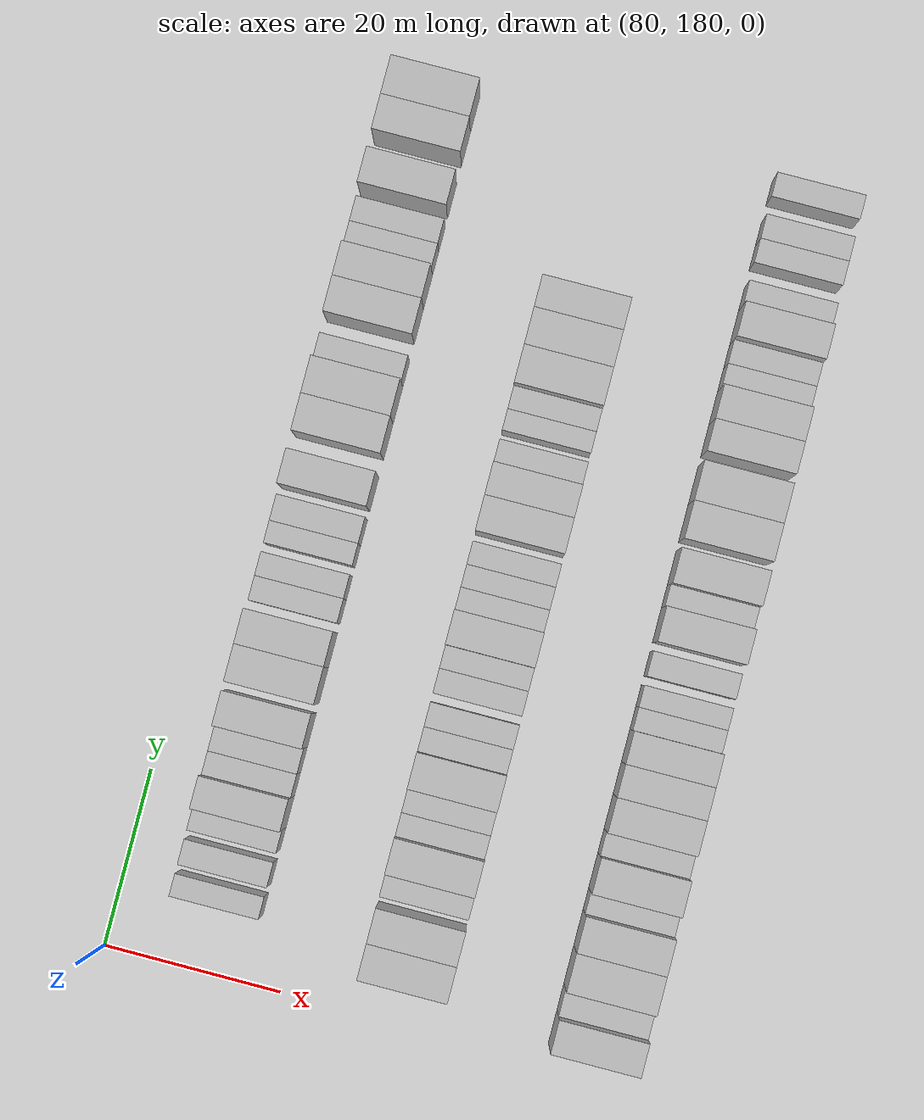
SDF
<sdf version="1.6">
 <world name="default">
  <model name="building_700">
   <static>1</static>
   <pose>91.0000 188.9119 0 0.000000 0.000000 0.000000</pose>
   <link name="link">
    <pose>0 0 3.00 0 0 0</pose>
    <collision name="collision"><geometry><box><size>10.0000 2.5192 6.0000</size></box></geometry></collision>
    <visual name="visual">
     <cast_shadows>0</cast_shadows>
     <geometry><box><size>10.0000 2.5192 6.0000</size></box></geometry>
     <material>
      <script>
       <uri>model://HANNAS_wall/materials/scripts</uri>
       <uri>model://HANNAS_wall/materials/textures</uri>
       <name>vrc/HANNAS_wall</name>
      </script>
     </material>
    </visual>
   </link>
  </model>
  <model name="building_701">
   <static>1</static>
   <pose>91.0000 192.5937 0 0.000000 0.000000 0.000000</pose>
   <link name="link">
    <pose>0 0 3.00 0 0 0</pose>
    <collision name="collision"><geometry><box><size>10.0000 2.8445 6.0000</size></box></geometry></collision>
    <visual name="visual">
     <cast_shadows>0</cast_shadows>
     <geometry><box><size>10.0000 2.8445 6.0000</size></box></geometry>
     <material>
      <script>
       <uri>model://HANNAS_wall/materials/scripts</uri>
       <uri>model://HANNAS_wall/materials/textures</uri>
       <name>vrc/HANNAS_wall</name>
      </script>
     </material>
    </visual>
   </link>
  </model>
  <model name="building_702">
   <static>1</static>
   <pose>91.0000 196.2846 0 0.000000 0.000000 0.000000</pose>
   <link name="link">
    <pose>0 0 3.00 0 0 0</pose>
    <collision name="collision"><geometry><box><size>10.0000 2.5373 6.0000</size></box></geometry></collision>
    <visual name="visual">
     <cast_shadows>0</cast_shadows>
     <geometry><box><size>10.0000 2.5373 6.0000</size></box></geometry>
     <material>
      <script>
       <uri>model://HANNAS_wall/materials/scripts</uri>
       <uri>model://HANNAS_wall/materials/textures</uri>
       <name>vrc/HANNAS_wall</name>
      </script>
     </material>
    </visual>
   </link>
  </model>
  <model name="building_703">
   <static>1</static>
   <pose>91.0000 199.3694 0 0.000000 0.000000 0.000000</pose>
   <link name="link">
    <pose>0 0 4.50 0 0 0</pose>
    <collision name="collision"><geometry><box><size>10.0000 3.6323 9.0000</size></box></geometry></collision>
    <visual name="visual">
     <cast_shadows>0</cast_shadows>
     <geometry><box><size>10.0000 3.6323 9.0000</size></box></geometry>
     <material>
      <script>
       <uri>model://HANNAS_wall/materials/scripts</uri>
       <uri>model://HANNAS_wall/materials/textures</uri>
       <name>vrc/HANNAS_wall</name>
      </script>
     </material>
    </visual>
   </link>
  </model>
  <model name="building_704">
   <static>1</static>
   <pose>91.0000 202.5203 0 0.000000 0.000000 0.000000</pose>
   <link name="link">
    <pose>0 0 3.00 0 0 0</pose>
    <collision name="collision"><geometry><box><size>10.0000 2.6696 6.0000</size></box></geometry></collision>
    <visual name="visual">
     <cast_shadows>0</cast_shadows>
     <geometry><box><size>10.0000 2.6696 6.0000</size></box></geometry>
     <material>
      <script>
       <uri>model://HANNAS_wall/materials/scripts</uri>
       <uri>model://HANNAS_wall/materials/textures</uri>
       <name>vrc/HANNAS_wall</name>
      </script>
     </material>
    </visual>
   </link>
  </model>
  <model name="building_705">
   <static>1</static>
   <pose>91.0000 205.2967 0 0.000000 0.000000 0.000000</pose>
   <link name="link">
    <pose>0 0 3.00 0 0 0</pose>
    <collision name="collision"><geometry><box><size>10.0000 2.8830 6.0000</size></box></geometry></collision>
    <visual name="visual">
     <cast_shadows>0</cast_shadows>
     <geometry><box><size>10.0000 2.8830 6.0000</size></box></geometry>
     <material>
      <script>
       <uri>model://HANNAS_wall/materials/scripts</uri>
       <uri>model://HANNAS_wall/materials/textures</uri>
       <name>vrc/HANNAS_wall</name>
      </script>
     </material>
    </visual>
   </link>
  </model>
  <model name="building_706">
   <static>1</static>
   <pose>91.0000 208.6957 0 0.000000 0.000000 0.000000</pose>
   <link name="link">
    <pose>0 0 4.50 0 0 0</pose>
    <collision name="collision"><geometry><box><size>10.0000 3.9150 9.0000</size></box></geometry></collision>
    <visual name="visual">
     <cast_shadows>0</cast_shadows>
     <geometry><box><size>10.0000 3.9150 9.0000</size></box></geometry>
     <material>
      <script>
       <uri>model://HANNAS_wall/materials/scripts</uri>
       <uri>model://HANNAS_wall/materials/textures</uri>
       <name>vrc/HANNAS_wall</name>
      </script>
     </material>
    </visual>
   </link>
  </model>
  <model name="building_707">
   <static>1</static>
   <pose>91.0000 213.7487 0 0.000000 0.000000 0.000000</pose>
   <link name="link">
    <pose>0 0 4.50 0 0 0</pose>
    <collision name="collision"><geometry><box><size>10.0000 4.1911 9.0000</size></box></geometry></collision>
    <visual name="visual">
     <cast_shadows>0</cast_shadows>
     <geometry><box><size>10.0000 4.1911 9.0000</size></box></geometry>
     <material>
      <script>
       <uri>model://HANNAS_wall/materials/scripts</uri>
       <uri>model://HANNAS_wall/materials/textures</uri>
       <name>vrc/HANNAS_wall</name>
      </script>
     </material>
    </visual>
   </link>
  </model>
  <model name="building_708">
   <static>1</static>
   <pose>91.0000 217.8129 0 0.000000 0.000000 0.000000</pose>
   <link name="link">
    <pose>0 0 4.50 0 0 0</pose>
    <collision name="collision"><geometry><box><size>10.0000 3.9374 9.0000</size></box></geometry></collision>
    <visual name="visual">
     <cast_shadows>0</cast_shadows>
     <geometry><box><size>10.0000 3.9374 9.0000</size></box></geometry>
     <material>
      <script>
       <uri>model://HANNAS_wall/materials/scripts</uri>
       <uri>model://HANNAS_wall/materials/textures</uri>
       <name>vrc/HANNAS_wall</name>
      </script>
     </material>
    </visual>
   </link>
  </model>
  <model name="building_709">
   <static>1</static>
   <pose>91.0000 222.1614 0 0.000000 0.000000 0.000000</pose>
   <link name="link">
    <pose>0 0 3.00 0 0 0</pose>
    <collision name="collision"><geometry><box><size>10.0000 2.7596 6.0000</size></box></geometry></collision>
    <visual name="visual">
     <cast_shadows>0</cast_shadows>
     <geometry><box><size>10.0000 2.7596 6.0000</size></box></geometry>
     <material>
      <script>
       <uri>model://HANNAS_wall/materials/scripts</uri>
       <uri>model://HANNAS_wall/materials/textures</uri>
       <name>vrc/HANNAS_wall</name>
      </script>
     </material>
    </visual>
   </link>
  </model>
  <model name="building_710">
   <static>1</static>
   <pose>91.0000 224.8915 0 0.000000 0.000000 0.000000</pose>
   <link name="link">
    <pose>0 0 3.00 0 0 0</pose>
    <collision name="collision"><geometry><box><size>10.0000 2.7006 6.0000</size></box></geometry></collision>
    <visual name="visual">
     <cast_shadows>0</cast_shadows>
     <geometry><box><size>10.0000 2.7006 6.0000</size></box></geometry>
     <material>
      <script>
       <uri>model://HANNAS_wall/materials/scripts</uri>
       <uri>model://HANNAS_wall/materials/textures</uri>
       <name>vrc/HANNAS_wall</name>
      </script>
     </material>
    </visual>
   </link>
  </model>
  <model name="building_711">
   <static>1</static>
   <pose>91.0000 228.4991 0 0.000000 0.000000 0.000000</pose>
   <link name="link">
    <pose>0 0 3.00 0 0 0</pose>
    <collision name="collision"><geometry><box><size>10.0000 2.5145 6.0000</size></box></geometry></collision>
    <visual name="visual">
     <cast_shadows>0</cast_shadows>
     <geometry><box><size>10.0000 2.5145 6.0000</size></box></geometry>
     <material>
      <script>
       <uri>model://HANNAS_wall/materials/scripts</uri>
       <uri>model://HANNAS_wall/materials/textures</uri>
       <name>vrc/HANNAS_wall</name>
      </script>
     </material>
    </visual>
   </link>
  </model>
  <model name="building_712">
   <static>1</static>
   <pose>91.0000 231.2410 0 0.000000 0.000000 0.000000</pose>
   <link name="link">
    <pose>0 0 3.00 0 0 0</pose>
    <collision name="collision"><geometry><box><size>10.0000 2.9693 6.0000</size></box></geometry></collision>
    <visual name="visual">
     <cast_shadows>0</cast_shadows>
     <geometry><box><size>10.0000 2.9693 6.0000</size></box></geometry>
     <material>
      <script>
       <uri>model://HANNAS_wall/materials/scripts</uri>
       <uri>model://HANNAS_wall/materials/textures</uri>
       <name>vrc/HANNAS_wall</name>
      </script>
     </material>
    </visual>
   </link>
  </model>
  <model name="building_713">
   <static>1</static>
   <pose>91.0000 235.6898 0 0.000000 0.000000 0.000000</pose>
   <link name="link">
    <pose>0 0 4.50 0 0 0</pose>
    <collision name="collision"><geometry><box><size>10.0000 3.9283 9.0000</size></box></geometry></collision>
    <visual name="visual">
     <cast_shadows>0</cast_shadows>
     <geometry><box><size>10.0000 3.9283 9.0000</size></box></geometry>
     <material>
      <script>
       <uri>model://HANNAS_wall/materials/scripts</uri>
       <uri>model://HANNAS_wall/materials/textures</uri>
       <name>vrc/HANNAS_wall</name>
      </script>
     </material>
    </visual>
   </link>
  </model>
  <model name="building_714">
   <static>1</static>
   <pose>91.0000 241.7460 0 0.000000 0.000000 0.000000</pose>
   <link name="link">
    <pose>0 0 4.50 0 0 0</pose>
    <collision name="collision"><geometry><box><size>10.0000 4.1840 9.0000</size></box></geometry></collision>
    <visual name="visual">
     <cast_shadows>0</cast_shadows>
     <geometry><box><size>10.0000 4.1840 9.0000</size></box></geometry>
     <material>
      <script>
       <uri>model://HANNAS_wall/materials/scripts</uri>
       <uri>model://HANNAS_wall/materials/textures</uri>
       <name>vrc/HANNAS_wall</name>
      </script>
     </material>
    </visual>
   </link>
  </model>
  <model name="building_715">
   <static>1</static>
   <pose>91.0000 245.9460 0 0.000000 0.000000 0.000000</pose>
   <link name="link">
    <pose>0 0 4.50 0 0 0</pose>
    <collision name="collision"><geometry><box><size>10.0000 4.2162 9.0000</size></box></geometry></collision>
    <visual name="visual">
     <cast_shadows>0</cast_shadows>
     <geometry><box><size>10.0000 4.2162 9.0000</size></box></geometry>
     <material>
      <script>
       <uri>model://HANNAS_wall/materials/scripts</uri>
       <uri>model://HANNAS_wall/materials/textures</uri>
       <name>vrc/HANNAS_wall</name>
      </script>
     </material>
    </visual>
   </link>
  </model>
  <model name="building_716">
   <static>1</static>
   <pose>91.0000 249.5340 0 0.000000 0.000000 0.000000</pose>
   <link name="link">
    <pose>0 0 3.00 0 0 0</pose>
    <collision name="collision"><geometry><box><size>10.0000 2.9599 6.0000</size></box></geometry></collision>
    <visual name="visual">
     <cast_shadows>0</cast_shadows>
     <geometry><box><size>10.0000 2.9599 6.0000</size></box></geometry>
     <material>
      <script>
       <uri>model://HANNAS_wall/materials/scripts</uri>
       <uri>model://HANNAS_wall/materials/textures</uri>
       <name>vrc/HANNAS_wall</name>
      </script>
     </material>
    </visual>
   </link>
  </model>
  <model name="building_717">
   <static>1</static>
   <pose>91.0000 255.0359 0 0.000000 0.000000 0.000000</pose>
   <link name="link">
    <pose>0 0 4.50 0 0 0</pose>
    <collision name="collision"><geometry><box><size>10.0000 4.0438 9.0000</size></box></geometry></collision>
    <visual name="visual">
     <cast_shadows>0</cast_shadows>
     <geometry><box><size>10.0000 4.0438 9.0000</size></box></geometry>
     <material>
      <script>
       <uri>model://HANNAS_wall/materials/scripts</uri>
       <uri>model://HANNAS_wall/materials/textures</uri>
       <name>vrc/HANNAS_wall</name>
      </script>
     </material>
    </visual>
   </link>
  </model>
  <model name="building_718">
   <static>1</static>
   <pose>91.0000 259.0055 0 0.000000 0.000000 0.000000</pose>
   <link name="link">
    <pose>0 0 4.50 0 0 0</pose>
    <collision name="collision"><geometry><box><size>10.0000 3.8954 9.0000</size></box></geometry></collision>
    <visual name="visual">
     <cast_shadows>0</cast_shadows>
     <geometry><box><size>10.0000 3.8954 9.0000</size></box></geometry>
     <material>
      <script>
       <uri>model://HANNAS_wall/materials/scripts</uri>
       <uri>model://HANNAS_wall/materials/textures</uri>
       <name>vrc/HANNAS_wall</name>
      </script>
     </material>
    </visual>
   </link>
  </model>
  <model name="building_719">
   <static>1</static>
   <pose>91.0000 262.3370 0 0.000000 0.000000 0.000000</pose>
   <link name="link">
    <pose>0 0 3.00 0 0 0</pose>
    <collision name="collision"><geometry><box><size>10.0000 2.7675 6.0000</size></box></geometry></collision>
    <visual name="visual">
     <cast_shadows>0</cast_shadows>
     <geometry><box><size>10.0000 2.7675 6.0000</size></box></geometry>
     <material>
      <script>
       <uri>model://HANNAS_wall/materials/scripts</uri>
       <uri>model://HANNAS_wall/materials/textures</uri>
       <name>vrc/HANNAS_wall</name>
      </script>
     </material>
    </visual>
   </link>
  </model>
  <model name="building_720">
   <static>1</static>
   <pose>91.0000 265.1417 0 0.000000 0.000000 0.000000</pose>
   <link name="link">
    <pose>0 0 3.00 0 0 0</pose>
    <collision name="collision"><geometry><box><size>10.0000 2.8419 6.0000</size></box></geometry></collision>
    <visual name="visual">
     <cast_shadows>0</cast_shadows>
     <geometry><box><size>10.0000 2.8419 6.0000</size></box></geometry>
     <material>
      <script>
       <uri>model://HANNAS_wall/materials/scripts</uri>
       <uri>model://HANNAS_wall/materials/textures</uri>
       <name>vrc/HANNAS_wall</name>
      </script>
     </material>
    </visual>
   </link>
  </model>
  <model name="building_721">
   <static>1</static>
   <pose>91.0000 269.5630 0 0.000000 0.000000 0.000000</pose>
   <link name="link">
    <pose>0 0 4.50 0 0 0</pose>
    <collision name="collision"><geometry><box><size>10.0000 4.0008 9.0000</size></box></geometry></collision>
    <visual name="visual">
     <cast_shadows>0</cast_shadows>
     <geometry><box><size>10.0000 4.0008 9.0000</size></box></geometry>
     <material>
      <script>
       <uri>model://HANNAS_wall/materials/scripts</uri>
       <uri>model://HANNAS_wall/materials/textures</uri>
       <name>vrc/HANNAS_wall</name>
      </script>
     </material>
    </visual>
   </link>
  </model>
  <model name="building_722">
   <static>1</static>
   <pose>91.0000 275.5456 0 0.000000 0.000000 0.000000</pose>
   <link name="link">
    <pose>0 0 4.50 0 0 0</pose>
    <collision name="collision"><geometry><box><size>10.0000 3.9643 9.0000</size></box></geometry></collision>
    <visual name="visual">
     <cast_shadows>0</cast_shadows>
     <geometry><box><size>10.0000 3.9643 9.0000</size></box></geometry>
     <material>
      <script>
       <uri>model://HANNAS_wall/materials/scripts</uri>
       <uri>model://HANNAS_wall/materials/textures</uri>
       <name>vrc/HANNAS_wall</name>
      </script>
     </material>
    </visual>
   </link>
  </model>
  <model name="building_723">
   <static>1</static>
   <pose>91.0000 279.7233 0 0.000000 0.000000 0.000000</pose>
   <link name="link">
    <pose>0 0 4.50 0 0 0</pose>
    <collision name="collision"><geometry><box><size>10.0000 4.3912 9.0000</size></box></geometry></collision>
    <visual name="visual">
     <cast_shadows>0</cast_shadows>
     <geometry><box><size>10.0000 4.3912 9.0000</size></box></geometry>
     <material>
      <script>
       <uri>model://HANNAS_wall/materials/scripts</uri>
       <uri>model://HANNAS_wall/materials/textures</uri>
       <name>vrc/HANNAS_wall</name>
      </script>
     </material>
    </visual>
   </link>
  </model>
  <model name="building_887">
   <static>1</static>
   <pose>113.0000 186.4324 0 0.000000 0.000000 0.000000</pose>
   <link name="link">
    <pose>0 0 4.50 0 0 0</pose>
    <collision name="collision"><geometry><box><size>10.0000 4.0455 9.0000</size></box></geometry></collision>
    <visual name="visual">
     <cast_shadows>0</cast_shadows>
     <geometry><box><size>10.0000 4.0455 9.0000</size></box></geometry>
     <material>
      <script>
       <uri>model://HANNAS_wall/materials/scripts</uri>
       <uri>model://HANNAS_wall/materials/textures</uri>
       <name>vrc/HANNAS_wall</name>
      </script>
     </material>
    </visual>
   </link>
  </model>
  <model name="building_888">
   <static>1</static>
   <pose>113.0000 190.4062 0 0.000000 0.000000 0.000000</pose>
   <link name="link">
    <pose>0 0 4.50 0 0 0</pose>
    <collision name="collision"><geometry><box><size>10.0000 3.9021 9.0000</size></box></geometry></collision>
    <visual name="visual">
     <cast_shadows>0</cast_shadows>
     <geometry><box><size>10.0000 3.9021 9.0000</size></box></geometry>
     <material>
      <script>
       <uri>model://HANNAS_wall/materials/scripts</uri>
       <uri>model://HANNAS_wall/materials/textures</uri>
       <name>vrc/HANNAS_wall</name>
      </script>
     </material>
    </visual>
   </link>
  </model>
  <model name="building_889">
   <static>1</static>
   <pose>113.0000 194.6992 0 0.000000 0.000000 0.000000</pose>
   <link name="link">
    <pose>0 0 3.00 0 0 0</pose>
    <collision name="collision"><geometry><box><size>10.0000 2.6840 6.0000</size></box></geometry></collision>
    <visual name="visual">
     <cast_shadows>0</cast_shadows>
     <geometry><box><size>10.0000 2.6840 6.0000</size></box></geometry>
     <material>
      <script>
       <uri>model://HANNAS_wall/materials/scripts</uri>
       <uri>model://HANNAS_wall/materials/textures</uri>
       <name>vrc/HANNAS_wall</name>
      </script>
     </material>
    </visual>
   </link>
  </model>
  <model name="building_890">
   <static>1</static>
   <pose>113.0000 198.0678 0 0.000000 0.000000 0.000000</pose>
   <link name="link">
    <pose>0 0 4.50 0 0 0</pose>
    <collision name="collision"><geometry><box><size>10.0000 4.0532 9.0000</size></box></geometry></collision>
    <visual name="visual">
     <cast_shadows>0</cast_shadows>
     <geometry><box><size>10.0000 4.0532 9.0000</size></box></geometry>
     <material>
      <script>
       <uri>model://HANNAS_wall/materials/scripts</uri>
       <uri>model://HANNAS_wall/materials/textures</uri>
       <name>vrc/HANNAS_wall</name>
      </script>
     </material>
    </visual>
   </link>
  </model>
  <model name="building_891">
   <static>1</static>
   <pose>113.0000 201.4213 0 0.000000 0.000000 0.000000</pose>
   <link name="link">
    <pose>0 0 3.00 0 0 0</pose>
    <collision name="collision"><geometry><box><size>10.0000 2.6536 6.0000</size></box></geometry></collision>
    <visual name="visual">
     <cast_shadows>0</cast_shadows>
     <geometry><box><size>10.0000 2.6536 6.0000</size></box></geometry>
     <material>
      <script>
       <uri>model://HANNAS_wall/materials/scripts</uri>
       <uri>model://HANNAS_wall/materials/textures</uri>
       <name>vrc/HANNAS_wall</name>
      </script>
     </material>
    </visual>
   </link>
  </model>
  <model name="building_892">
   <static>1</static>
   <pose>113.0000 204.1120 0 0.000000 0.000000 0.000000</pose>
   <link name="link">
    <pose>0 0 3.00 0 0 0</pose>
    <collision name="collision"><geometry><box><size>10.0000 2.7279 6.0000</size></box></geometry></collision>
    <visual name="visual">
     <cast_shadows>0</cast_shadows>
     <geometry><box><size>10.0000 2.7279 6.0000</size></box></geometry>
     <material>
      <script>
       <uri>model://HANNAS_wall/materials/scripts</uri>
       <uri>model://HANNAS_wall/materials/textures</uri>
       <name>vrc/HANNAS_wall</name>
      </script>
     </material>
    </visual>
   </link>
  </model>
  <model name="building_893">
   <static>1</static>
   <pose>113.0000 207.5222 0 0.000000 0.000000 0.000000</pose>
   <link name="link">
    <pose>0 0 4.50 0 0 0</pose>
    <collision name="collision"><geometry><box><size>10.0000 4.0924 9.0000</size></box></geometry></collision>
    <visual name="visual">
     <cast_shadows>0</cast_shadows>
     <geometry><box><size>10.0000 4.0924 9.0000</size></box></geometry>
     <material>
      <script>
       <uri>model://HANNAS_wall/materials/scripts</uri>
       <uri>model://HANNAS_wall/materials/textures</uri>
       <name>vrc/HANNAS_wall</name>
      </script>
     </material>
    </visual>
   </link>
  </model>
  <model name="building_894">
   <static>1</static>
   <pose>113.0000 210.9606 0 0.000000 0.000000 0.000000</pose>
   <link name="link">
    <pose>0 0 3.00 0 0 0</pose>
    <collision name="collision"><geometry><box><size>10.0000 2.7844 6.0000</size></box></geometry></collision>
    <visual name="visual">
     <cast_shadows>0</cast_shadows>
     <geometry><box><size>10.0000 2.7844 6.0000</size></box></geometry>
     <material>
      <script>
       <uri>model://HANNAS_wall/materials/scripts</uri>
       <uri>model://HANNAS_wall/materials/textures</uri>
       <name>vrc/HANNAS_wall</name>
      </script>
     </material>
    </visual>
   </link>
  </model>
  <model name="building_895">
   <static>1</static>
   <pose>113.0000 213.7298 0 0.000000 0.000000 0.000000</pose>
   <link name="link">
    <pose>0 0 3.00 0 0 0</pose>
    <collision name="collision"><geometry><box><size>10.0000 2.7542 6.0000</size></box></geometry></collision>
    <visual name="visual">
     <cast_shadows>0</cast_shadows>
     <geometry><box><size>10.0000 2.7542 6.0000</size></box></geometry>
     <material>
      <script>
       <uri>model://HANNAS_wall/materials/scripts</uri>
       <uri>model://HANNAS_wall/materials/textures</uri>
       <name>vrc/HANNAS_wall</name>
      </script>
     </material>
    </visual>
   </link>
  </model>
  <model name="building_896">
   <static>1</static>
   <pose>113.0000 217.5042 0 0.000000 0.000000 0.000000</pose>
   <link name="link">
    <pose>0 0 3.00 0 0 0</pose>
    <collision name="collision"><geometry><box><size>10.0000 2.7947 6.0000</size></box></geometry></collision>
    <visual name="visual">
     <cast_shadows>0</cast_shadows>
     <geometry><box><size>10.0000 2.7947 6.0000</size></box></geometry>
     <material>
      <script>
       <uri>model://HANNAS_wall/materials/scripts</uri>
       <uri>model://HANNAS_wall/materials/textures</uri>
       <name>vrc/HANNAS_wall</name>
      </script>
     </material>
    </visual>
   </link>
  </model>
  <model name="building_897">
   <static>1</static>
   <pose>113.0000 220.2072 0 0.000000 0.000000 0.000000</pose>
   <link name="link">
    <pose>0 0 3.00 0 0 0</pose>
    <collision name="collision"><geometry><box><size>10.0000 2.6113 6.0000</size></box></geometry></collision>
    <visual name="visual">
     <cast_shadows>0</cast_shadows>
     <geometry><box><size>10.0000 2.6113 6.0000</size></box></geometry>
     <material>
      <script>
       <uri>model://HANNAS_wall/materials/scripts</uri>
       <uri>model://HANNAS_wall/materials/textures</uri>
       <name>vrc/HANNAS_wall</name>
      </script>
     </material>
    </visual>
   </link>
  </model>
  <model name="building_898">
   <static>1</static>
   <pose>113.0000 223.4742 0 0.000000 0.000000 0.000000</pose>
   <link name="link">
    <pose>0 0 4.50 0 0 0</pose>
    <collision name="collision"><geometry><box><size>10.0000 3.9228 9.0000</size></box></geometry></collision>
    <visual name="visual">
     <cast_shadows>0</cast_shadows>
     <geometry><box><size>10.0000 3.9228 9.0000</size></box></geometry>
     <material>
      <script>
       <uri>model://HANNAS_wall/materials/scripts</uri>
       <uri>model://HANNAS_wall/materials/textures</uri>
       <name>vrc/HANNAS_wall</name>
      </script>
     </material>
    </visual>
   </link>
  </model>
  <model name="building_899">
   <static>1</static>
   <pose>113.0000 226.7289 0 0.000000 0.000000 0.000000</pose>
   <link name="link">
    <pose>0 0 3.00 0 0 0</pose>
    <collision name="collision"><geometry><box><size>10.0000 2.5865 6.0000</size></box></geometry></collision>
    <visual name="visual">
     <cast_shadows>0</cast_shadows>
     <geometry><box><size>10.0000 2.5865 6.0000</size></box></geometry>
     <material>
      <script>
       <uri>model://HANNAS_wall/materials/scripts</uri>
       <uri>model://HANNAS_wall/materials/textures</uri>
       <name>vrc/HANNAS_wall</name>
      </script>
     </material>
    </visual>
   </link>
  </model>
  <model name="building_900">
   <static>1</static>
   <pose>113.0000 229.3061 0 0.000000 0.000000 0.000000</pose>
   <link name="link">
    <pose>0 0 3.00 0 0 0</pose>
    <collision name="collision"><geometry><box><size>10.0000 2.5679 6.0000</size></box></geometry></collision>
    <visual name="visual">
     <cast_shadows>0</cast_shadows>
     <geometry><box><size>10.0000 2.5679 6.0000</size></box></geometry>
     <material>
      <script>
       <uri>model://HANNAS_wall/materials/scripts</uri>
       <uri>model://HANNAS_wall/materials/textures</uri>
       <name>vrc/HANNAS_wall</name>
      </script>
     </material>
    </visual>
   </link>
  </model>
  <model name="building_901">
   <static>1</static>
   <pose>113.0000 231.8961 0 0.000000 0.000000 0.000000</pose>
   <link name="link">
    <pose>0 0 3.00 0 0 0</pose>
    <collision name="collision"><geometry><box><size>10.0000 2.6121 6.0000</size></box></geometry></collision>
    <visual name="visual">
     <cast_shadows>0</cast_shadows>
     <geometry><box><size>10.0000 2.6121 6.0000</size></box></geometry>
     <material>
      <script>
       <uri>model://HANNAS_wall/materials/scripts</uri>
       <uri>model://HANNAS_wall/materials/textures</uri>
       <name>vrc/HANNAS_wall</name>
      </script>
     </material>
    </visual>
   </link>
  </model>
  <model name="building_902">
   <static>1</static>
   <pose>113.0000 236.2126 0 0.000000 0.000000 0.000000</pose>
   <link name="link">
    <pose>0 0 4.50 0 0 0</pose>
    <collision name="collision"><geometry><box><size>10.0000 4.0209 9.0000</size></box></geometry></collision>
    <visual name="visual">
     <cast_shadows>0</cast_shadows>
     <geometry><box><size>10.0000 4.0209 9.0000</size></box></geometry>
     <material>
      <script>
       <uri>model://HANNAS_wall/materials/scripts</uri>
       <uri>model://HANNAS_wall/materials/textures</uri>
       <name>vrc/HANNAS_wall</name>
      </script>
     </material>
    </visual>
   </link>
  </model>
  <model name="building_903">
   <static>1</static>
   <pose>113.0000 240.0799 0 0.000000 0.000000 0.000000</pose>
   <link name="link">
    <pose>0 0 4.50 0 0 0</pose>
    <collision name="collision"><geometry><box><size>10.0000 3.7136 9.0000</size></box></geometry></collision>
    <visual name="visual">
     <cast_shadows>0</cast_shadows>
     <geometry><box><size>10.0000 3.7136 9.0000</size></box></geometry>
     <material>
      <script>
       <uri>model://HANNAS_wall/materials/scripts</uri>
       <uri>model://HANNAS_wall/materials/textures</uri>
       <name>vrc/HANNAS_wall</name>
      </script>
     </material>
    </visual>
   </link>
  </model>
  <model name="building_904">
   <static>1</static>
   <pose>113.0000 243.3262 0 0.000000 0.000000 0.000000</pose>
   <link name="link">
    <pose>0 0 3.00 0 0 0</pose>
    <collision name="collision"><geometry><box><size>10.0000 2.7791 6.0000</size></box></geometry></collision>
    <visual name="visual">
     <cast_shadows>0</cast_shadows>
     <geometry><box><size>10.0000 2.7791 6.0000</size></box></geometry>
     <material>
      <script>
       <uri>model://HANNAS_wall/materials/scripts</uri>
       <uri>model://HANNAS_wall/materials/textures</uri>
       <name>vrc/HANNAS_wall</name>
      </script>
     </material>
    </visual>
   </link>
  </model>
  <model name="building_905">
   <static>1</static>
   <pose>113.0000 246.9291 0 0.000000 0.000000 0.000000</pose>
   <link name="link">
    <pose>0 0 3.00 0 0 0</pose>
    <collision name="collision"><geometry><box><size>10.0000 2.4267 6.0000</size></box></geometry></collision>
    <visual name="visual">
     <cast_shadows>0</cast_shadows>
     <geometry><box><size>10.0000 2.4267 6.0000</size></box></geometry>
     <material>
      <script>
       <uri>model://HANNAS_wall/materials/scripts</uri>
       <uri>model://HANNAS_wall/materials/textures</uri>
       <name>vrc/HANNAS_wall</name>
      </script>
     </material>
    </visual>
   </link>
  </model>
  <model name="building_906">
   <static>1</static>
   <pose>113.0000 249.4519 0 0.000000 0.000000 0.000000</pose>
   <link name="link">
    <pose>0 0 3.00 0 0 0</pose>
    <collision name="collision"><geometry><box><size>10.0000 2.6188 6.0000</size></box></geometry></collision>
    <visual name="visual">
     <cast_shadows>0</cast_shadows>
     <geometry><box><size>10.0000 2.6188 6.0000</size></box></geometry>
     <material>
      <script>
       <uri>model://HANNAS_wall/materials/scripts</uri>
       <uri>model://HANNAS_wall/materials/textures</uri>
       <name>vrc/HANNAS_wall</name>
      </script>
     </material>
    </visual>
   </link>
  </model>
  <model name="building_907">
   <static>1</static>
   <pose>113.0000 252.9164 0 0.000000 0.000000 0.000000</pose>
   <link name="link">
    <pose>0 0 4.50 0 0 0</pose>
    <collision name="collision"><geometry><box><size>10.0000 4.3102 9.0000</size></box></geometry></collision>
    <visual name="visual">
     <cast_shadows>0</cast_shadows>
     <geometry><box><size>10.0000 4.3102 9.0000</size></box></geometry>
     <material>
      <script>
       <uri>model://HANNAS_wall/materials/scripts</uri>
       <uri>model://HANNAS_wall/materials/textures</uri>
       <name>vrc/HANNAS_wall</name>
      </script>
     </material>
    </visual>
   </link>
  </model>
  <model name="building_908">
   <static>1</static>
   <pose>113.0000 257.1690 0 0.000000 0.000000 0.000000</pose>
   <link name="link">
    <pose>0 0 4.50 0 0 0</pose>
    <collision name="collision"><geometry><box><size>10.0000 4.1951 9.0000</size></box></geometry></collision>
    <visual name="visual">
     <cast_shadows>0</cast_shadows>
     <geometry><box><size>10.0000 4.1951 9.0000</size></box></geometry>
     <material>
      <script>
       <uri>model://HANNAS_wall/materials/scripts</uri>
       <uri>model://HANNAS_wall/materials/textures</uri>
       <name>vrc/HANNAS_wall</name>
      </script>
     </material>
    </visual>
   </link>
  </model>
  <model name="building_909">
   <static>1</static>
   <pose>113.0000 261.0847 0 0.000000 0.000000 0.000000</pose>
   <link name="link">
    <pose>0 0 4.50 0 0 0</pose>
    <collision name="collision"><geometry><box><size>10.0000 3.6362 9.0000</size></box></geometry></collision>
    <visual name="visual">
     <cast_shadows>0</cast_shadows>
     <geometry><box><size>10.0000 3.6362 9.0000</size></box></geometry>
     <material>
      <script>
       <uri>model://HANNAS_wall/materials/scripts</uri>
       <uri>model://HANNAS_wall/materials/textures</uri>
       <name>vrc/HANNAS_wall</name>
      </script>
     </material>
    </visual>
   </link>
  </model>
  <model name="building_1065">
   <static>1</static>
   <pose>135.0000 183.9634 0 0.000000 0.000000 0.000000</pose>
   <link name="link">
    <pose>0 0 4.50 0 0 0</pose>
    <collision name="collision"><geometry><box><size>10.0000 3.7633 9.0000</size></box></geometry></collision>
    <visual name="visual">
     <cast_shadows>0</cast_shadows>
     <geometry><box><size>10.0000 3.7633 9.0000</size></box></geometry>
     <material>
      <script>
       <uri>model://HANNAS_wall/materials/scripts</uri>
       <uri>model://HANNAS_wall/materials/textures</uri>
       <name>vrc/HANNAS_wall</name>
      </script>
     </material>
    </visual>
   </link>
  </model>
  <model name="building_1066">
   <static>1</static>
   <pose>135.0000 187.3362 0 0.000000 0.000000 0.000000</pose>
   <link name="link">
    <pose>0 0 3.00 0 0 0</pose>
    <collision name="collision"><geometry><box><size>10.0000 2.9824 6.0000</size></box></geometry></collision>
    <visual name="visual">
     <cast_shadows>0</cast_shadows>
     <geometry><box><size>10.0000 2.9824 6.0000</size></box></geometry>
     <material>
      <script>
       <uri>model://HANNAS_wall/materials/scripts</uri>
       <uri>model://HANNAS_wall/materials/textures</uri>
       <name>vrc/HANNAS_wall</name>
      </script>
     </material>
    </visual>
   </link>
  </model>
  <model name="building_1067">
   <static>1</static>
   <pose>135.0000 190.9992 0 0.000000 0.000000 0.000000</pose>
   <link name="link">
    <pose>0 0 4.50 0 0 0</pose>
    <collision name="collision"><geometry><box><size>10.0000 4.3435 9.0000</size></box></geometry></collision>
    <visual name="visual">
     <cast_shadows>0</cast_shadows>
     <geometry><box><size>10.0000 4.3435 9.0000</size></box></geometry>
     <material>
      <script>
       <uri>model://HANNAS_wall/materials/scripts</uri>
       <uri>model://HANNAS_wall/materials/textures</uri>
       <name>vrc/HANNAS_wall</name>
      </script>
     </material>
    </visual>
   </link>
  </model>
  <model name="building_1068">
   <static>1</static>
   <pose>135.0000 195.1967 0 0.000000 0.000000 0.000000</pose>
   <link name="link">
    <pose>0 0 4.50 0 0 0</pose>
    <collision name="collision"><geometry><box><size>10.0000 4.0516 9.0000</size></box></geometry></collision>
    <visual name="visual">
     <cast_shadows>0</cast_shadows>
     <geometry><box><size>10.0000 4.0516 9.0000</size></box></geometry>
     <material>
      <script>
       <uri>model://HANNAS_wall/materials/scripts</uri>
       <uri>model://HANNAS_wall/materials/textures</uri>
       <name>vrc/HANNAS_wall</name>
      </script>
     </material>
    </visual>
   </link>
  </model>
  <model name="building_1069">
   <static>1</static>
   <pose>135.0000 198.4406 0 0.000000 0.000000 0.000000</pose>
   <link name="link">
    <pose>0 0 3.00 0 0 0</pose>
    <collision name="collision"><geometry><box><size>10.0000 2.4361 6.0000</size></box></geometry></collision>
    <visual name="visual">
     <cast_shadows>0</cast_shadows>
     <geometry><box><size>10.0000 2.4361 6.0000</size></box></geometry>
     <material>
      <script>
       <uri>model://HANNAS_wall/materials/scripts</uri>
       <uri>model://HANNAS_wall/materials/textures</uri>
       <name>vrc/HANNAS_wall</name>
      </script>
     </material>
    </visual>
   </link>
  </model>
  <model name="building_1070">
   <static>1</static>
   <pose>135.0000 201.6763 0 0.000000 0.000000 0.000000</pose>
   <link name="link">
    <pose>0 0 4.50 0 0 0</pose>
    <collision name="collision"><geometry><box><size>10.0000 4.0353 9.0000</size></box></geometry></collision>
    <visual name="visual">
     <cast_shadows>0</cast_shadows>
     <geometry><box><size>10.0000 4.0353 9.0000</size></box></geometry>
     <material>
      <script>
       <uri>model://HANNAS_wall/materials/scripts</uri>
       <uri>model://HANNAS_wall/materials/textures</uri>
       <name>vrc/HANNAS_wall</name>
      </script>
     </material>
    </visual>
   </link>
  </model>
  <model name="building_1071">
   <static>1</static>
   <pose>135.0000 205.0425 0 0.000000 0.000000 0.000000</pose>
   <link name="link">
    <pose>0 0 3.00 0 0 0</pose>
    <collision name="collision"><geometry><box><size>10.0000 2.6971 6.0000</size></box></geometry></collision>
    <visual name="visual">
     <cast_shadows>0</cast_shadows>
     <geometry><box><size>10.0000 2.6971 6.0000</size></box></geometry>
     <material>
      <script>
       <uri>model://HANNAS_wall/materials/scripts</uri>
       <uri>model://HANNAS_wall/materials/textures</uri>
       <name>vrc/HANNAS_wall</name>
      </script>
     </material>
    </visual>
   </link>
  </model>
  <model name="building_1072">
   <static>1</static>
   <pose>135.0000 208.3668 0 0.000000 0.000000 0.000000</pose>
   <link name="link">
    <pose>0 0 4.50 0 0 0</pose>
    <collision name="collision"><geometry><box><size>10.0000 3.9515 9.0000</size></box></geometry></collision>
    <visual name="visual">
     <cast_shadows>0</cast_shadows>
     <geometry><box><size>10.0000 3.9515 9.0000</size></box></geometry>
     <material>
      <script>
       <uri>model://HANNAS_wall/materials/scripts</uri>
       <uri>model://HANNAS_wall/materials/textures</uri>
       <name>vrc/HANNAS_wall</name>
      </script>
     </material>
    </visual>
   </link>
  </model>
  <model name="building_1073">
   <static>1</static>
   <pose>135.0000 212.1773 0 0.000000 0.000000 0.000000</pose>
   <link name="link">
    <pose>0 0 4.50 0 0 0</pose>
    <collision name="collision"><geometry><box><size>10.0000 3.6697 9.0000</size></box></geometry></collision>
    <visual name="visual">
     <cast_shadows>0</cast_shadows>
     <geometry><box><size>10.0000 3.6697 9.0000</size></box></geometry>
     <material>
      <script>
       <uri>model://HANNAS_wall/materials/scripts</uri>
       <uri>model://HANNAS_wall/materials/textures</uri>
       <name>vrc/HANNAS_wall</name>
      </script>
     </material>
    </visual>
   </link>
  </model>
  <model name="building_1074">
   <static>1</static>
   <pose>135.0000 215.8568 0 0.000000 0.000000 0.000000</pose>
   <link name="link">
    <pose>0 0 4.50 0 0 0</pose>
    <collision name="collision"><geometry><box><size>10.0000 3.6892 9.0000</size></box></geometry></collision>
    <visual name="visual">
     <cast_shadows>0</cast_shadows>
     <geometry><box><size>10.0000 3.6892 9.0000</size></box></geometry>
     <material>
      <script>
       <uri>model://HANNAS_wall/materials/scripts</uri>
       <uri>model://HANNAS_wall/materials/textures</uri>
       <name>vrc/HANNAS_wall</name>
      </script>
     </material>
    </visual>
   </link>
  </model>
  <model name="building_1075">
   <static>1</static>
   <pose>135.0000 219.0008 0 0.000000 0.000000 0.000000</pose>
   <link name="link">
    <pose>0 0 3.00 0 0 0</pose>
    <collision name="collision"><geometry><box><size>10.0000 2.5988 6.0000</size></box></geometry></collision>
    <visual name="visual">
     <cast_shadows>0</cast_shadows>
     <geometry><box><size>10.0000 2.5988 6.0000</size></box></geometry>
     <material>
      <script>
       <uri>model://HANNAS_wall/materials/scripts</uri>
       <uri>model://HANNAS_wall/materials/textures</uri>
       <name>vrc/HANNAS_wall</name>
      </script>
     </material>
    </visual>
   </link>
  </model>
  <model name="building_1076">
   <static>1</static>
   <pose>135.0000 221.5369 0 0.000000 0.000000 0.000000</pose>
   <link name="link">
    <pose>0 0 3.00 0 0 0</pose>
    <collision name="collision"><geometry><box><size>10.0000 2.4733 6.0000</size></box></geometry></collision>
    <visual name="visual">
     <cast_shadows>0</cast_shadows>
     <geometry><box><size>10.0000 2.4733 6.0000</size></box></geometry>
     <material>
      <script>
       <uri>model://HANNAS_wall/materials/scripts</uri>
       <uri>model://HANNAS_wall/materials/textures</uri>
       <name>vrc/HANNAS_wall</name>
      </script>
     </material>
    </visual>
   </link>
  </model>
  <model name="building_1077">
   <static>1</static>
   <pose>135.0000 225.1934 0 0.000000 0.000000 0.000000</pose>
   <link name="link">
    <pose>0 0 3.00 0 0 0</pose>
    <collision name="collision"><geometry><box><size>10.0000 2.8398 6.0000</size></box></geometry></collision>
    <visual name="visual">
     <cast_shadows>0</cast_shadows>
     <geometry><box><size>10.0000 2.8398 6.0000</size></box></geometry>
     <material>
      <script>
       <uri>model://HANNAS_wall/materials/scripts</uri>
       <uri>model://HANNAS_wall/materials/textures</uri>
       <name>vrc/HANNAS_wall</name>
      </script>
     </material>
    </visual>
   </link>
  </model>
  <model name="building_1078">
   <static>1</static>
   <pose>135.0000 229.5992 0 0.000000 0.000000 0.000000</pose>
   <link name="link">
    <pose>0 0 4.50 0 0 0</pose>
    <collision name="collision"><geometry><box><size>10.0000 3.9717 9.0000</size></box></geometry></collision>
    <visual name="visual">
     <cast_shadows>0</cast_shadows>
     <geometry><box><size>10.0000 3.9717 9.0000</size></box></geometry>
     <material>
      <script>
       <uri>model://HANNAS_wall/materials/scripts</uri>
       <uri>model://HANNAS_wall/materials/textures</uri>
       <name>vrc/HANNAS_wall</name>
      </script>
     </material>
    </visual>
   </link>
  </model>
  <model name="building_1079">
   <static>1</static>
   <pose>135.0000 232.8523 0 0.000000 0.000000 0.000000</pose>
   <link name="link">
    <pose>0 0 3.00 0 0 0</pose>
    <collision name="collision"><geometry><box><size>10.0000 2.5346 6.0000</size></box></geometry></collision>
    <visual name="visual">
     <cast_shadows>0</cast_shadows>
     <geometry><box><size>10.0000 2.5346 6.0000</size></box></geometry>
     <material>
      <script>
       <uri>model://HANNAS_wall/materials/scripts</uri>
       <uri>model://HANNAS_wall/materials/textures</uri>
       <name>vrc/HANNAS_wall</name>
      </script>
     </material>
    </visual>
   </link>
  </model>
  <model name="building_1080">
   <static>1</static>
   <pose>135.0000 236.1133 0 0.000000 0.000000 0.000000</pose>
   <link name="link">
    <pose>0 0 4.50 0 0 0</pose>
    <collision name="collision"><geometry><box><size>10.0000 3.9874 9.0000</size></box></geometry></collision>
    <visual name="visual">
     <cast_shadows>0</cast_shadows>
     <geometry><box><size>10.0000 3.9874 9.0000</size></box></geometry>
     <material>
      <script>
       <uri>model://HANNAS_wall/materials/scripts</uri>
       <uri>model://HANNAS_wall/materials/textures</uri>
       <name>vrc/HANNAS_wall</name>
      </script>
     </material>
    </visual>
   </link>
  </model>
  <model name="building_1081">
   <static>1</static>
   <pose>135.0000 241.2455 0 0.000000 0.000000 0.000000</pose>
   <link name="link">
    <pose>0 0 4.50 0 0 0</pose>
    <collision name="collision"><geometry><box><size>10.0000 4.2770 9.0000</size></box></geometry></collision>
    <visual name="visual">
     <cast_shadows>0</cast_shadows>
     <geometry><box><size>10.0000 4.2770 9.0000</size></box></geometry>
     <material>
      <script>
       <uri>model://HANNAS_wall/materials/scripts</uri>
       <uri>model://HANNAS_wall/materials/textures</uri>
       <name>vrc/HANNAS_wall</name>
      </script>
     </material>
    </visual>
   </link>
  </model>
  <model name="building_1082">
   <static>1</static>
   <pose>135.0000 245.6284 0 0.000000 0.000000 0.000000</pose>
   <link name="link">
    <pose>0 0 4.50 0 0 0</pose>
    <collision name="collision"><geometry><box><size>10.0000 4.4888 9.0000</size></box></geometry></collision>
    <visual name="visual">
     <cast_shadows>0</cast_shadows>
     <geometry><box><size>10.0000 4.4888 9.0000</size></box></geometry>
     <material>
      <script>
       <uri>model://HANNAS_wall/materials/scripts</uri>
       <uri>model://HANNAS_wall/materials/textures</uri>
       <name>vrc/HANNAS_wall</name>
      </script>
     </material>
    </visual>
   </link>
  </model>
  <model name="building_1083">
   <static>1</static>
   <pose>135.0000 250.6977 0 0.000000 0.000000 0.000000</pose>
   <link name="link">
    <pose>0 0 4.50 0 0 0</pose>
    <collision name="collision"><geometry><box><size>10.0000 3.6499 9.0000</size></box></geometry></collision>
    <visual name="visual">
     <cast_shadows>0</cast_shadows>
     <geometry><box><size>10.0000 3.6499 9.0000</size></box></geometry>
     <material>
      <script>
       <uri>model://HANNAS_wall/materials/scripts</uri>
       <uri>model://HANNAS_wall/materials/textures</uri>
       <name>vrc/HANNAS_wall</name>
      </script>
     </material>
    </visual>
   </link>
  </model>
  <model name="building_1084">
   <static>1</static>
   <pose>135.0000 254.4456 0 0.000000 0.000000 0.000000</pose>
   <link name="link">
    <pose>0 0 4.50 0 0 0</pose>
    <collision name="collision"><geometry><box><size>10.0000 3.8458 9.0000</size></box></geometry></collision>
    <visual name="visual">
     <cast_shadows>0</cast_shadows>
     <geometry><box><size>10.0000 3.8458 9.0000</size></box></geometry>
     <material>
      <script>
       <uri>model://HANNAS_wall/materials/scripts</uri>
       <uri>model://HANNAS_wall/materials/textures</uri>
       <name>vrc/HANNAS_wall</name>
      </script>
     </material>
    </visual>
   </link>
  </model>
  <model name="building_1085">
   <static>1</static>
   <pose>135.0000 257.7110 0 0.000000 0.000000 0.000000</pose>
   <link name="link">
    <pose>0 0 3.00 0 0 0</pose>
    <collision name="collision"><geometry><box><size>10.0000 2.6850 6.0000</size></box></geometry></collision>
    <visual name="visual">
     <cast_shadows>0</cast_shadows>
     <geometry><box><size>10.0000 2.6850 6.0000</size></box></geometry>
     <material>
      <script>
       <uri>model://HANNAS_wall/materials/scripts</uri>
       <uri>model://HANNAS_wall/materials/textures</uri>
       <name>vrc/HANNAS_wall</name>
      </script>
     </material>
    </visual>
   </link>
  </model>
  <model name="building_1086">
   <static>1</static>
   <pose>135.0000 260.3985 0 0.000000 0.000000 0.000000</pose>
   <link name="link">
    <pose>0 0 3.00 0 0 0</pose>
    <collision name="collision"><geometry><box><size>10.0000 2.6899 6.0000</size></box></geometry></collision>
    <visual name="visual">
     <cast_shadows>0</cast_shadows>
     <geometry><box><size>10.0000 2.6899 6.0000</size></box></geometry>
     <material>
      <script>
       <uri>model://HANNAS_wall/materials/scripts</uri>
       <uri>model://HANNAS_wall/materials/textures</uri>
       <name>vrc/HANNAS_wall</name>
      </script>
     </material>
    </visual>
   </link>
  </model>
  <model name="building_1087">
   <static>1</static>
   <pose>135.0000 263.7098 0 0.000000 0.000000 0.000000</pose>
   <link name="link">
    <pose>0 0 4.50 0 0 0</pose>
    <collision name="collision"><geometry><box><size>10.0000 3.9328 9.0000</size></box></geometry></collision>
    <visual name="visual">
     <cast_shadows>0</cast_shadows>
     <geometry><box><size>10.0000 3.9328 9.0000</size></box></geometry>
     <material>
      <script>
       <uri>model://HANNAS_wall/materials/scripts</uri>
       <uri>model://HANNAS_wall/materials/textures</uri>
       <name>vrc/HANNAS_wall</name>
      </script>
     </material>
    </visual>
   </link>
  </model>
  <model name="building_1088">
   <static>1</static>
   <pose>135.0000 267.0894 0 0.000000 0.000000 0.000000</pose>
   <link name="link">
    <pose>0 0 3.00 0 0 0</pose>
    <collision name="collision"><geometry><box><size>10.0000 2.8264 6.0000</size></box></geometry></collision>
    <visual name="visual">
     <cast_shadows>0</cast_shadows>
     <geometry><box><size>10.0000 2.8264 6.0000</size></box></geometry>
     <material>
      <script>
       <uri>model://HANNAS_wall/materials/scripts</uri>
       <uri>model://HANNAS_wall/materials/textures</uri>
       <name>vrc/HANNAS_wall</name>
      </script>
     </material>
    </visual>
   </link>
  </model>
  <model name="building_1089">
   <static>1</static>
   <pose>135.0000 271.8831 0 0.000000 0.000000 0.000000</pose>
   <link name="link">
    <pose>0 0 3.00 0 0 0</pose>
    <collision name="collision"><geometry><box><size>10.0000 2.7610 6.0000</size></box></geometry></collision>
    <visual name="visual">
     <cast_shadows>0</cast_shadows>
     <geometry><box><size>10.0000 2.7610 6.0000</size></box></geometry>
     <material>
      <script>
       <uri>model://HANNAS_wall/materials/scripts</uri>
       <uri>model://HANNAS_wall/materials/textures</uri>
       <name>vrc/HANNAS_wall</name>
      </script>
     </material>
    </visual>
   </link>
  </model>
  <model name="building_1090">
   <static>1</static>
   <pose>135.0000 274.6451 0 0.000000 0.000000 0.000000</pose>
   <link name="link">
    <pose>0 0 3.00 0 0 0</pose>
    <collision name="collision"><geometry><box><size>10.0000 2.7631 6.0000</size></box></geometry></collision>
    <visual name="visual">
     <cast_shadows>0</cast_shadows>
     <geometry><box><size>10.0000 2.7631 6.0000</size></box></geometry>
     <material>
      <script>
       <uri>model://HANNAS_wall/materials/scripts</uri>
       <uri>model://HANNAS_wall/materials/textures</uri>
       <name>vrc/HANNAS_wall</name>
      </script>
     </material>
    </visual>
   </link>
  </model>
  <model name="building_1091">
   <static>1</static>
   <pose>135.0000 279.4055 0 0.000000 0.000000 0.000000</pose>
   <link name="link">
    <pose>0 0 3.00 0 0 0</pose>
    <collision name="collision"><geometry><box><size>10.0000 2.7577 6.0000</size></box></geometry></collision>
    <visual name="visual">
     <cast_shadows>0</cast_shadows>
     <geometry><box><size>10.0000 2.7577 6.0000</size></box></geometry>
     <material>
      <script>
       <uri>model://HANNAS_wall/materials/scripts</uri>
       <uri>model://HANNAS_wall/materials/textures</uri>
       <name>vrc/HANNAS_wall</name>
      </script>
     </material>
    </visual>
   </link>
  </model>
 </world>
</sdf>
